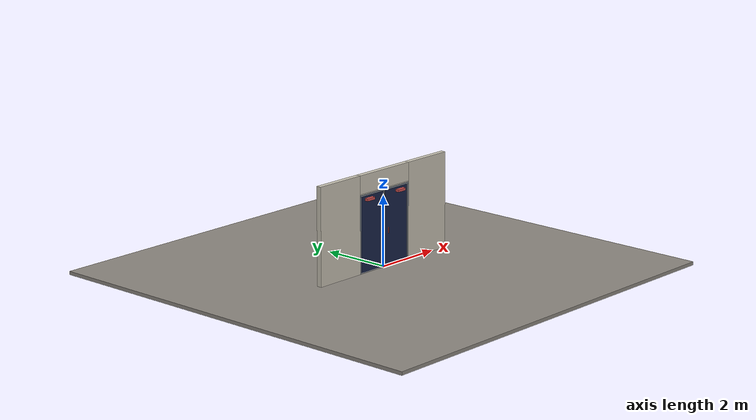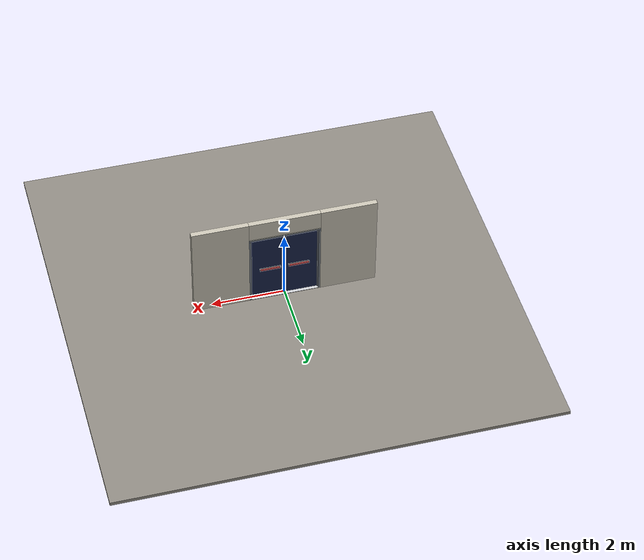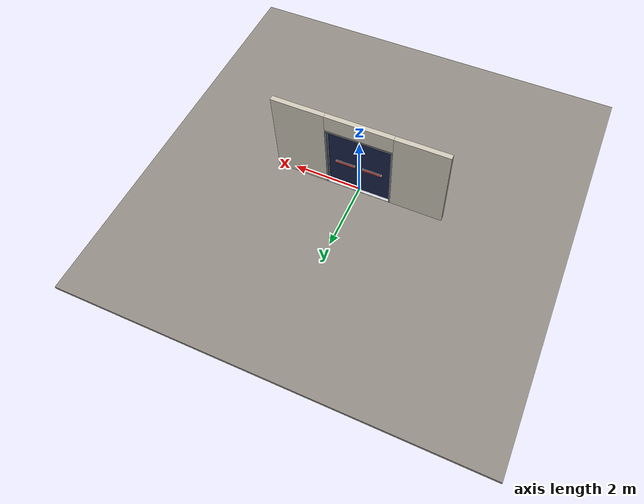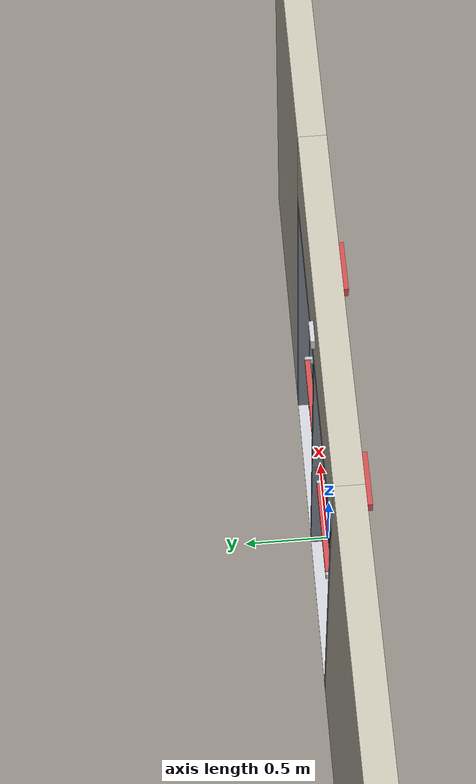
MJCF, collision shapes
<?xml version="1.0" ?>
<mujoco model="db0128_swing_double_full">
  <compiler angle="radian" meshdir="../../hardware" texturedir="../../textures" autolimits="true" inertiafromgeom="false"/>
  <option timestep="0.002" integrator="implicitfast" cone="elliptic" impratio="10" noslip_iterations="3">
    <flag multiccd="enable"/>
  </option>
  <size memory="16M"/>
  <default>
    <geom condim="4" solref="0.005 1" solimp="0.95 0.99 0.001"/>
    <joint solreflimit="0.005 1" solimplimit="0.95 0.99 0.001"/>
    <tendon solreflimit="0.005 1"/>
    <equality solref="0.002 1"/>
  </default>
  <visual>
    <headlight ambient="0.4 0.4 0.4" diffuse="0.7 0.7 0.7" specular="0.2 0.2 0.2"/>
    <quality shadowsize="4096"/>
    <map znear="0.01" zfar="60"/>
  </visual>
  <asset>
    <mesh name="closer_body_fdc4667657" file="closer_body_fdc4667657.obj"/>
    <mesh name="exit_sign_a6449bfa2c" file="exit_sign_a6449bfa2c.obj"/>
    <mesh name="hinge_e22b26c0c1" file="hinge_e22b26c0c1.obj"/>
    <mesh name="hinge_jamb_e1d088f8dc" file="hinge_jamb_e1d088f8dc.obj"/>
    <mesh name="pull_1e5d69a91a" file="pull_1e5d69a91a.obj"/>
    <mesh name="touchbar_pad_924805f6b2" file="touchbar_pad_924805f6b2.obj"/>
    <material name="mat_floor" rgba="0.55 0.53 0.5 1" specular="0.2" shininess="0.15" reflectance="0"/>
    <material name="mat_wall" rgba="0.78 0.76 0.7 1" specular="0.2" shininess="0.1" reflectance="0"/>
    <material name="mat_leaf_a" rgba="0.09 0.13 0.28 1" specular="0.23" shininess="0.52" reflectance="0.02"/>
    <material name="mat_hinge" rgba="0.65 0.66 0.68 1" specular="0.74" shininess="0.5" reflectance="0.36"/>
    <material name="mat_op_stainless" rgba="0.75 0.76 0.77 1" specular="0.8" shininess="0.65" reflectance="0.4"/>
    <material name="mat_bolt" rgba="0.75 0.76 0.77 1" specular="0.8" shininess="0.65" reflectance="0.4"/>
    <material name="mat_closer" rgba="0.22 0.17 0.13 1" specular="0.8" shininess="0.6" reflectance="0.4"/>
    <material name="mat_exit_sign" rgba="0.85 0.1 0.1 1" specular="0.2" shininess="0.6" reflectance="0"/>
    <material name="mat_sign_bracket" rgba="0.8 0.81 0.83 1" specular="0.8" shininess="0.6" reflectance="0.4"/>
    <material name="mat_leaf_b" rgba="0.09 0.13 0.28 1" specular="0.23" shininess="0.52" reflectance="0.02"/>
    <material name="mat_frame" rgba="0.45 0.48 0.52 1" specular="0.32" shininess="0.6" reflectance="0.08"/>
    <material name="mat_threshold" rgba="0.8 0.81 0.83 1" specular="0.8" shininess="0.6" reflectance="0.4"/>
    <texture name="skybox" type="skybox" builtin="gradient" rgb1="0.6 0.7 0.85" rgb2="0.9 0.92 0.95" width="256" height="256"/>
  </asset>
  <worldbody>
    <light name="sun" pos="1.5 -2.5 4" dir="-0.3 0.5 -0.8" directional="true" diffuse="0.8 0.8 0.8" specular="0.3 0.3 0.3" castshadow="true"/>
    <light name="fill" pos="-1.5 2.5 3" dir="0.3 -0.5 -0.7" directional="true" diffuse="0.35 0.35 0.4" castshadow="false"/>
    <camera name="robot_view" pos="0 -2.607312 1.812087" xyaxes="1 0 0 0 0.26963 0.962964" fovy="52"/>
    <camera name="far_view" pos="0 2.668312 1.812087" xyaxes="-1 0 0 0 -0.26963 0.962964" fovy="52"/>
    <camera name="iso" pos="-2.004737 -2.185262 2.234138" xyaxes="0.741536 -0.670913 0 0.242917 0.268487 0.932151" fovy="46"/>
    <camera name="detail_handle" pos="0.062 -0.882 1.296" xyaxes="0.97561 0.219512 0 -0.070934 0.315262 0.94635" fovy="38"/>
    <geom name="floor" type="box" size="6 6 0.05" pos="0 0 -0.05" material="mat_floor" group="0" contype="1" conaffinity="1" friction="0.8 0.005 0.0001" density="2400"/>
    <geom name="wall_left" type="box" size="0.76575 0.0725 1.3735" pos="-1.73425 0.0305 1.3735" material="mat_wall" group="0" contype="1" conaffinity="1" friction="0.6 0.005 0.0001" density="800"/>
    <geom name="wall_right" type="box" size="0.76575 0.0725 1.3735" pos="1.73425 0.0305 1.3735" material="mat_wall" group="0" contype="1" conaffinity="1" friction="0.6 0.005 0.0001" density="800"/>
    <geom name="wall_header" type="box" size="0.9685 0.0725 0.26" pos="0 0.0305 2.487" material="mat_wall" group="0" contype="1" conaffinity="1" friction="0.6 0.005 0.0001" density="800"/>
    <geom name="hinge_0_jamb" type="mesh" mesh="hinge_jamb_e1d088f8dc" pos="-0.9155 -0.029 0.267" material="mat_hinge" group="1" contype="0" conaffinity="0" density="7850"/>
    <geom name="hinge_1_jamb" type="mesh" mesh="hinge_jamb_e1d088f8dc" pos="-0.9155 -0.029 1.08" material="mat_hinge" group="1" contype="0" conaffinity="0" density="7850"/>
    <geom name="hinge_2_jamb" type="mesh" mesh="hinge_jamb_e1d088f8dc" pos="-0.9155 -0.029 1.963" material="mat_hinge" group="1" contype="0" conaffinity="0" density="7850"/>
    <geom name="exit_sign" type="mesh" mesh="exit_sign_a6449bfa2c" pos="0 0.15 2.447" material="mat_exit_sign" group="2" contype="0" conaffinity="0" density="500"/>
    <geom name="exit_sign_bracket" type="box" size="0.05775 0.0115 0.035" pos="0 0.114 2.447" material="mat_sign_bracket" group="2" contype="0" conaffinity="0" density="7850"/>
    <geom name="hinge_0_jamb_2" type="mesh" mesh="hinge_jamb_e1d088f8dc" pos="0.9155 -0.029 0.267" quat="0 0 1 0" material="mat_hinge" group="1" contype="0" conaffinity="0" density="7850"/>
    <geom name="hinge_1_jamb_2" type="mesh" mesh="hinge_jamb_e1d088f8dc" pos="0.9155 -0.029 1.08" quat="0 0 1 0" material="mat_hinge" group="1" contype="0" conaffinity="0" density="7850"/>
    <geom name="hinge_2_jamb_2" type="mesh" mesh="hinge_jamb_e1d088f8dc" pos="0.9155 -0.029 1.963" quat="0 0 1 0" material="mat_hinge" group="1" contype="0" conaffinity="0" density="7850"/>
    <geom name="jamb_l" type="box" size="0.025 0.0725 1.0735" pos="-0.9435 0.0305 1.0735" material="mat_frame" group="0" contype="1" conaffinity="1" friction="0.6 0.005 0.0001" density="300"/>
    <geom name="jamb_r" type="box" size="0.025 0.0725 1.0735" pos="0.9435 0.0305 1.0735" material="mat_frame" group="0" contype="1" conaffinity="1" friction="0.6 0.005 0.0001" density="300"/>
    <geom name="jamb_head" type="box" size="0.9685 0.0725 0.025" pos="0 0.0305 2.172" material="mat_frame" group="0" contype="1" conaffinity="1" friction="0.6 0.005 0.0001" density="300"/>
    <geom name="head_stud" type="box" size="0.9685 0.0725 0.015" pos="0 0.0305 2.212" material="mat_wall" group="0" contype="1" conaffinity="1" friction="0.6 0.005 0.0001" density="500"/>
    <geom name="stop_l" type="box" size="0.015 0.008 1.0735" pos="-0.9035 0.0305 1.0735" material="mat_frame" group="0" contype="1" conaffinity="1" friction="0.6 0.005 0.0001" density="300"/>
    <geom name="stop_r" type="box" size="0.015 0.008 1.0735" pos="0.9035 0.0305 1.0735" material="mat_frame" group="0" contype="1" conaffinity="1" friction="0.6 0.005 0.0001" density="300"/>
    <geom name="stop_head" type="box" size="0.9185 0.008 0.015" pos="0 0.0305 2.132" material="mat_frame" group="0" contype="1" conaffinity="1" friction="0.6 0.005 0.0001" density="300"/>
    <geom name="threshold" type="box" size="0.9685 0.0725 0.0065" pos="0 0.0305 0.0065" material="mat_threshold" group="0" contype="1" conaffinity="1" friction="0.5 0.005 0.0001" density="2700"/>
    <geom name="mullion_a_1016_wall_n" type="box" size="0.0125 0.04675 0.018" pos="-0.0125 0.05625 1.016" material="mat_frame" group="0" contype="1" conaffinity="1" friction="0.6 0.005 0.0001" density="300"/>
    <geom name="mullion_a_1016_wall_p" type="box" size="0.0125 0.008 0.018" pos="-0.0125 -0.0175 1.016" material="mat_frame" group="0" contype="1" conaffinity="1" friction="0.6 0.005 0.0001" density="300"/>
    <geom name="mullion_a_1016_ramp" type="box" size="0.0125 0.02081 0.018" pos="-0.004038 -0.037743 1.016" quat="0.968756 0 0 0.248016" material="mat_frame" group="0" contype="1" conaffinity="1" friction="0.12 0.005 0.0001" density="300"/>
    <geom name="mullion_a_1016_back" type="box" size="0.002 0.0095 0.018" pos="0 0 1.016" material="mat_frame" group="0" contype="1" conaffinity="1" friction="0.6 0.005 0.0001" density="300"/>
    <geom name="mullion_a_seg_0" type="box" size="0.0125 0.0725 0.499" pos="-0.0125 0.0305 0.499" material="mat_frame" group="0" contype="1" conaffinity="1" friction="0.6 0.005 0.0001" density="300"/>
    <geom name="mullion_a_seg_1" type="box" size="0.0125 0.0725 0.5565" pos="-0.0125 0.0305 1.5905" material="mat_frame" group="0" contype="1" conaffinity="1" friction="0.6 0.005 0.0001" density="300"/>
    <geom name="mullion_b_1016_wall_n" type="box" size="0.0125 0.04675 0.018" pos="0.0125 0.05625 1.016" material="mat_frame" group="0" contype="1" conaffinity="1" friction="0.6 0.005 0.0001" density="300"/>
    <geom name="mullion_b_1016_wall_p" type="box" size="0.0125 0.008 0.018" pos="0.0125 -0.0175 1.016" material="mat_frame" group="0" contype="1" conaffinity="1" friction="0.6 0.005 0.0001" density="300"/>
    <geom name="mullion_b_1016_ramp" type="box" size="0.0125 0.02081 0.018" pos="0.004038 -0.037743 1.016" quat="0.968756 0 0 -0.248016" material="mat_frame" group="0" contype="1" conaffinity="1" friction="0.12 0.005 0.0001" density="300"/>
    <geom name="mullion_b_seg_0" type="box" size="0.0125 0.0725 0.499" pos="0.0125 0.0305 0.499" material="mat_frame" group="0" contype="1" conaffinity="1" friction="0.6 0.005 0.0001" density="300"/>
    <geom name="mullion_b_seg_1" type="box" size="0.0125 0.0725 0.5565" pos="0.0125 0.0305 1.5905" material="mat_frame" group="0" contype="1" conaffinity="1" friction="0.6 0.005 0.0001" density="300"/>
    <site name="approach_point" pos="0 -1.5 0" quat="1 0 0 0" size="0.05" rgba="0.2 0.9 0.2 0.5" group="4"/>
    <site name="goal_point" pos="0 1.5 0" quat="1 0 0 0" size="0.05" rgba="0.2 0.9 0.2 0.5" group="4"/>
    <site name="door_plane_center" pos="0 0 1.0735" quat="1 0 0 0" size="0.02" rgba="0.2 0.9 0.2 0.5" group="4"/>
    <site name="approach_point_2" pos="0 -1.5 0" quat="1 0 0 0" size="0.05" rgba="0.2 0.9 0.2 0.5" group="4"/>
    <site name="goal_point_2" pos="0 1.5 0" quat="1 0 0 0" size="0.05" rgba="0.2 0.9 0.2 0.5" group="4"/>
    <site name="door_plane_center_2" pos="0 0 1.0735" quat="1 0 0 0" size="0.02" rgba="0.2 0.9 0.2 0.5" group="4"/>
    <site name="approach_point_3" pos="0 -1.5 0" quat="1 0 0 0" size="0.05" rgba="0.2 0.9 0.2 0.5" group="4"/>
    <site name="goal_point_3" pos="0 1.5 0" quat="1 0 0 0" size="0.05" rgba="0.2 0.9 0.2 0.5" group="4"/>
    <site name="door_plane_center_3" pos="0 0 1.0735" quat="1 0 0 0" size="0.02" rgba="0.2 0.9 0.2 0.5" group="4"/>
    <body name="leaf_a" pos="-0.9185 0 0">
      <inertial pos="0.412719 -0.016284 1.297839" mass="48.886343" quat="-0.495108 0.471844 0.513962 0.51776" diaginertia="2.781187166 21.946697729 24.636287039"/>
      <joint name="leaf_a_hinge" type="hinge" axis="0 0 -1" pos="0.003 -0.029 0" limited="true" range="0 1.570796" damping="12.268966" frictionloss="0.319959" stiffness="11.45279" springref="-1.917437" armature="0.02"/>
      <geom name="leaf_a_slab" type="box" size="0.44375 0.022 1.063" pos="0.44675 0 1.08" material="mat_leaf_a" group="0" contype="1" conaffinity="1" friction="0.4 0.005 0.0001" density="1"/>
      <geom name="hinge_0" type="mesh" mesh="hinge_e22b26c0c1" pos="0.003 -0.029 0.267" material="mat_hinge" group="1" contype="0" conaffinity="0" density="7850"/>
      <geom name="hinge_1" type="mesh" mesh="hinge_e22b26c0c1" pos="0.003 -0.029 1.08" material="mat_hinge" group="1" contype="0" conaffinity="0" density="7850"/>
      <geom name="hinge_2" type="mesh" mesh="hinge_e22b26c0c1" pos="0.003 -0.029 1.963" material="mat_hinge" group="1" contype="0" conaffinity="0" density="7850"/>
      <geom name="leaf_a_exit_device_rail" type="box" size="0.28625 0.006 0.025" pos="0.52425 0.028 1.016" material="mat_op_stainless" group="0" contype="1" conaffinity="1" friction="0.6 0.005 0.0001" density="3000"/>
      <geom name="leaf_a_exit_device_rail_end_n" type="box" size="0.01 0.0325 0.025" pos="0.248 0.0545 1.016" material="mat_op_stainless" group="0" contype="1" conaffinity="1" friction="0.6 0.005 0.0001" density="3000"/>
      <geom name="leaf_a_exit_device_rail_end_p" type="box" size="0.01 0.0325 0.025" pos="0.8005 0.0545 1.016" material="mat_op_stainless" group="0" contype="1" conaffinity="1" friction="0.6 0.005 0.0001" density="3000"/>
      <geom name="leaf_a_far_pull_n" type="mesh" mesh="pull_1e5d69a91a" pos="0.8005 -0.022 1.016" quat="0.707107 0.707107 0 0" material="mat_op_stainless" group="1" contype="0" conaffinity="0" density="3000"/>
      <geom name="leaf_a_far_pull_col_n" type="capsule" size="0.0095 0.08" pos="0.8005 -0.082 1.016" material="mat_op_stainless" group="3" contype="1" conaffinity="1" rgba="0.8 0.3 0.3 0.25" friction="0.7 0.01 0.0001" density="3000"/>
      <geom name="leaf_a_latch_bolt_faceplate" type="box" size="0.0006 0.014 0.028" pos="0.8899 0 1.016" material="mat_bolt" group="1" contype="0" conaffinity="0" density="8500"/>
      <geom name="closer_body" type="mesh" mesh="closer_body_fdc4667657" pos="0.3 -0.022 2.046" quat="0.707107 0.707107 0 0" material="mat_closer" group="1" contype="0" conaffinity="0" density="2000"/>
      <geom name="closer_body_col" type="box" size="0.145 0.05 0.035" pos="0.3 -0.072 2.046" material="mat_closer" group="3" contype="1" conaffinity="1" rgba="0.8 0.3 0.3 0.25" friction="0.6 0.005 0.0001" density="2000"/>
      <site name="leaf_a_far_pull_grip_n" pos="0.8005 -0.082 1.016" quat="1 0 0 0" size="0.012" rgba="0.2 0.9 0.2 0.5" group="4"/>
      <site name="leaf_a_edge_mid" pos="0.8905 0 1.063" quat="1 0 0 0" size="0.02" rgba="0.2 0.9 0.2 0.5" group="4"/>
      <body name="leaf_a_exit_device" pos="0.52425 0.022 1.016">
        <inertial pos="0 0.05 0" mass="4.26465" quat="0.707107 -0.707107 0 0" diaginertia="0.001039508 0.098834063 0.099233874"/>
        <joint name="leaf_a_exit_device_slide" type="slide" axis="0 -1 0" limited="true" range="0 0.016" damping="151.51297" frictionloss="0.5" stiffness="1300" springref="-0.015385" armature="0.15"/>
        <geom name="leaf_a_exit_device_pad" type="mesh" mesh="touchbar_pad_924805f6b2" pos="0 0 0" quat="-0.707107 0.707107 0 0" material="mat_op_stainless" group="1" contype="0" conaffinity="0" density="3000"/>
        <geom name="leaf_a_exit_device_pad_col" type="box" size="0.26325 0.015 0.0225" pos="0 0.05 0" material="mat_op_stainless" group="3" contype="1" conaffinity="1" rgba="0.8 0.3 0.3 0.25" friction="0.8 0.01 0.0001" density="3000"/>
        <site name="leaf_a_exit_device_push" pos="0 0.065 0" quat="1 0 0 0" size="0.015" rgba="0.2 0.9 0.2 0.5" group="4"/>
      </body>
      <body name="leaf_a_latch_bolt" pos="0.8905 0 1.016">
        <inertial pos="-0.0055 0 0" mass="0.074627" quat="0.92388 -0.382683 0 0" diaginertia="0.000002271 0.000013255 0.000013255"/>
        <joint name="leaf_a_latch_bolt_slide" type="slide" axis="-1 0 0" limited="true" range="0 0.019" damping="2" frictionloss="0.3" stiffness="550" springref="-0.01" armature="0.1"/>
        <geom name="leaf_a_latch_bolt_capsule" type="capsule" size="0.008 0.0165" pos="-0.0055 0 0" quat="0.707107 0 0.707107 0" material="mat_bolt" group="0" contype="1" conaffinity="1" friction="0.2 0.005 0.0001" density="8500"/>
      </body>
    </body>
    <body name="leaf_b" pos="0.9185 0 0">
      <inertial pos="-0.412719 -0.016284 1.297839" mass="48.886343" quat="0.51776 -0.513962 -0.471844 -0.495108" diaginertia="2.781187166 21.946697729 24.636287039"/>
      <joint name="leaf_b_hinge" type="hinge" axis="0 0 1" pos="-0.003 -0.029 0" limited="true" range="0 1.570796" damping="12.268966" frictionloss="0.319959" stiffness="11.45279" springref="-1.917437" armature="0.02"/>
      <geom name="leaf_b_slab" type="box" size="0.44375 0.022 1.063" pos="-0.44675 0 1.08" material="mat_leaf_b" group="0" contype="1" conaffinity="1" friction="0.4 0.005 0.0001" density="1"/>
      <geom name="hinge_0_2" type="mesh" mesh="hinge_e22b26c0c1" pos="-0.003 -0.029 0.267" quat="0 0 1 0" material="mat_hinge" group="1" contype="0" conaffinity="0" density="7850"/>
      <geom name="hinge_1_2" type="mesh" mesh="hinge_e22b26c0c1" pos="-0.003 -0.029 1.08" quat="0 0 1 0" material="mat_hinge" group="1" contype="0" conaffinity="0" density="7850"/>
      <geom name="hinge_2_2" type="mesh" mesh="hinge_e22b26c0c1" pos="-0.003 -0.029 1.963" quat="0 0 1 0" material="mat_hinge" group="1" contype="0" conaffinity="0" density="7850"/>
      <geom name="leaf_b_exit_device_rail" type="box" size="0.28625 0.006 0.025" pos="-0.52425 0.028 1.016" material="mat_op_stainless" group="0" contype="1" conaffinity="1" friction="0.6 0.005 0.0001" density="3000"/>
      <geom name="leaf_b_exit_device_rail_end_n" type="box" size="0.01 0.0325 0.025" pos="-0.8005 0.0545 1.016" material="mat_op_stainless" group="0" contype="1" conaffinity="1" friction="0.6 0.005 0.0001" density="3000"/>
      <geom name="leaf_b_exit_device_rail_end_p" type="box" size="0.01 0.0325 0.025" pos="-0.248 0.0545 1.016" material="mat_op_stainless" group="0" contype="1" conaffinity="1" friction="0.6 0.005 0.0001" density="3000"/>
      <geom name="leaf_b_far_pull_n" type="mesh" mesh="pull_1e5d69a91a" pos="-0.8005 -0.022 1.016" quat="0 0 -0.707107 0.707107" material="mat_op_stainless" group="1" contype="0" conaffinity="0" density="3000"/>
      <geom name="leaf_b_far_pull_col_n" type="capsule" size="0.0095 0.08" pos="-0.8005 -0.082 1.016" material="mat_op_stainless" group="3" contype="1" conaffinity="1" rgba="0.8 0.3 0.3 0.25" friction="0.7 0.01 0.0001" density="3000"/>
      <geom name="leaf_b_latch_bolt_faceplate" type="box" size="0.0006 0.014 0.028" pos="-0.8899 0 1.016" material="mat_bolt" group="1" contype="0" conaffinity="0" density="8500"/>
      <geom name="closer_body_2" type="mesh" mesh="closer_body_fdc4667657" pos="-0.3 -0.022 2.046" quat="0 0 -0.707107 0.707107" material="mat_closer" group="1" contype="0" conaffinity="0" density="2000"/>
      <geom name="closer_body_col_2" type="box" size="0.145 0.05 0.035" pos="-0.3 -0.072 2.046" material="mat_closer" group="3" contype="1" conaffinity="1" rgba="0.8 0.3 0.3 0.25" friction="0.6 0.005 0.0001" density="2000"/>
      <site name="leaf_b_far_pull_grip_n" pos="-0.8005 -0.082 1.016" quat="1 0 0 0" size="0.012" rgba="0.2 0.9 0.2 0.5" group="4"/>
      <site name="leaf_b_edge_mid" pos="-0.8905 0 1.063" quat="1 0 0 0" size="0.02" rgba="0.2 0.9 0.2 0.5" group="4"/>
      <body name="leaf_b_exit_device" pos="-0.52425 0.022 1.016">
        <inertial pos="0 0.05 0" mass="4.26465" quat="0 0 0.707107 0.707107" diaginertia="0.001039508 0.098834063 0.099233874"/>
        <joint name="leaf_b_exit_device_slide" type="slide" axis="0 -1 0" limited="true" range="0 0.016" damping="151.51297" frictionloss="0.5" stiffness="1300" springref="-0.015385" armature="0.15"/>
        <geom name="leaf_b_exit_device_pad" type="mesh" mesh="touchbar_pad_924805f6b2" pos="0 0 0" quat="0 0 0.707107 0.707107" material="mat_op_stainless" group="1" contype="0" conaffinity="0" density="3000"/>
        <geom name="leaf_b_exit_device_pad_col" type="box" size="0.26325 0.015 0.0225" pos="0 0.05 0" material="mat_op_stainless" group="3" contype="1" conaffinity="1" rgba="0.8 0.3 0.3 0.25" friction="0.8 0.01 0.0001" density="3000"/>
        <site name="leaf_b_exit_device_push" pos="0 0.065 0" quat="1 0 0 0" size="0.015" rgba="0.2 0.9 0.2 0.5" group="4"/>
      </body>
      <body name="leaf_b_latch_bolt" pos="-0.8905 0 1.016">
        <inertial pos="0.0055 0 0" mass="0.074627" quat="0.92388 0.382683 0 0" diaginertia="0.000002271 0.000013255 0.000013255"/>
        <joint name="leaf_b_latch_bolt_slide" type="slide" axis="1 0 0" limited="true" range="0 0.019" damping="2" frictionloss="0.3" stiffness="550" springref="-0.01" armature="0.1"/>
        <geom name="leaf_b_latch_bolt_capsule" type="capsule" size="0.008 0.0165" pos="0.0055 0 0" quat="0.707107 0 -0.707107 0" material="mat_bolt" group="0" contype="1" conaffinity="1" friction="0.2 0.005 0.0001" density="8500"/>
      </body>
    </body>
  </worldbody>
  <tendon>
    <fixed name="leaf_a_latch_bolt_coupling" limited="true" range="0 10">
      <joint joint="leaf_a_latch_bolt_slide" coef="1"/>
      <joint joint="leaf_a_exit_device_slide" coef="-1.357143"/>
    </fixed>
    <fixed name="leaf_b_latch_bolt_coupling" limited="true" range="0 10">
      <joint joint="leaf_b_latch_bolt_slide" coef="1"/>
      <joint joint="leaf_b_exit_device_slide" coef="-1.357143"/>
    </fixed>
  </tendon>
  <sensor>
    <jointpos name="leaf_a_hinge_pos" joint="leaf_a_hinge"/>
    <jointvel name="leaf_a_hinge_vel" joint="leaf_a_hinge"/>
    <jointpos name="leaf_a_exit_device_slide_pos" joint="leaf_a_exit_device_slide"/>
    <jointvel name="leaf_a_exit_device_slide_vel" joint="leaf_a_exit_device_slide"/>
    <jointpos name="leaf_a_latch_bolt_slide_pos" joint="leaf_a_latch_bolt_slide"/>
    <jointvel name="leaf_a_latch_bolt_slide_vel" joint="leaf_a_latch_bolt_slide"/>
    <jointpos name="leaf_b_hinge_pos" joint="leaf_b_hinge"/>
    <jointvel name="leaf_b_hinge_vel" joint="leaf_b_hinge"/>
    <jointpos name="leaf_b_exit_device_slide_pos" joint="leaf_b_exit_device_slide"/>
    <jointvel name="leaf_b_exit_device_slide_vel" joint="leaf_b_exit_device_slide"/>
    <jointpos name="leaf_b_latch_bolt_slide_pos" joint="leaf_b_latch_bolt_slide"/>
    <jointvel name="leaf_b_latch_bolt_slide_vel" joint="leaf_b_latch_bolt_slide"/>
  </sensor>
</mujoco>
